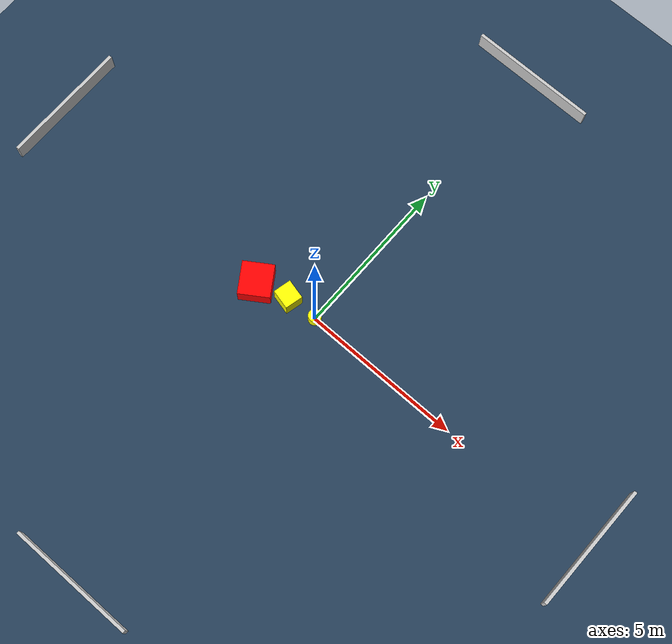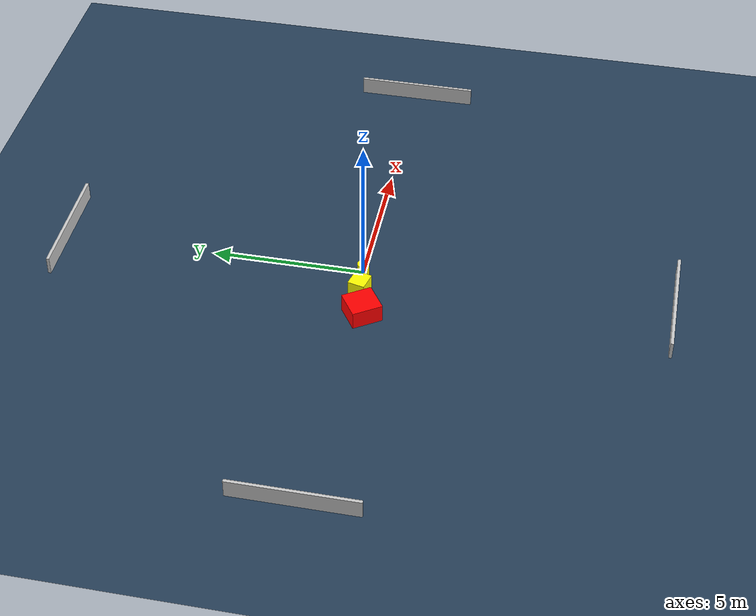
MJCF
<?xml version="1.0" ?>
<mujoco model="generated_environment">
  <option timestep="0.01" integrator="RK4" cone="elliptic"/>
  <default>
    <geom density="1"/>
  </default>
  <asset>
    <texture builtin="gradient" height="3072" name="skybox" rgb1="0.3 0.5 0.7" rgb2="0 0 0" type="skybox" width="512"/>
    <texture builtin="checker" height="300" name="groundplane" rgb1="0.2 0.3 0.4" rgb2="0.1 0.2 0.3" type="2d" width="300"/>
    <material name="groundplane" reflectance="0.2" texrepeat="5 5" texture="groundplane"/>
  </asset>
  <worldbody>
    <light dir="0 0 -1" directional="true" pos="0 0 1.5"/>
    <geom condim="3" friction="0.5 0.005 0.001" material="groundplane" name="floor" pos="0 0 0" size="0 0 0.05" type="plane"/>
    <body name="walls">
      <geom name="wall_1" condim="4" pos="-10.0 0.0 0.3" rgba="0.800000011920929 0.800000011920929 0.800000011920929 1.0" size="0.05 2.0 0.3" type="box"/>
      <geom name="wall_2" condim="4" pos="10.0 0.0 0.3" rgba="0.800000011920929 0.800000011920929 0.800000011920929 1.0" size="0.05 2.0 0.3" type="box"/>
      <geom name="wall_3" condim="4" pos="0.0 -10.0 0.3" rgba="0.800000011920929 0.800000011920929 0.800000011920929 1.0" size="2.0 0.05 0.3" type="box"/>
      <geom name="wall_4" condim="4" pos="0.0 10.0 0.3" rgba="0.800000011920929 0.800000011920929 0.800000011920929 1.0" size="2.0 0.05 0.3" type="box"/>
    </body>
    <body name="robot">
      <joint name="joint_x" type="slide" pos="0 0 0" axis="1 0 0"/>
      <joint name="joint_y" type="slide" pos="0 0 0" axis="0 1 0"/>
      <geom name="robot" type="cylinder" pos="0.0 0.0 0.2" size="0.2 0.2 0.0" mass="5.0" friction="1.0 0.005 0.0001" condim="4" rgba="1.0 1.0 0.0 1.0"/>
    </body>
    <body name="obstacle_1_movable">
      <geom name="obstacle_1_movable" condim="4" pos="-0.9591588025455136 -0.07421431962947973 0.3" euler="0 0 76.41902365632097" friction="0.0 0.005 0.001" rgba="1.0 1.0 0.0 1.0" size="0.28122273220885075 0.30788859335954916 0.3" type="box" mass="0.1"/>
      <joint type="free"/>
    </body>
    <body name="obstacle_2_static">
      <geom name="obstacle_2_static" condim="4" pos="-1.9540598266945874 -0.34191908173811264 0.3" euler="0 0 123.42348193384592" friction="0.0 0.005 0.001" rgba="1.0 0.0 0.0 1.0" size="0.5056414798441097 0.4827798785717203 0.3" type="box"/>
    </body>
  </worldbody>
  <actuator>
    <motor name="actuator_x" joint="joint_x" gear="1" ctrlrange="-1 1"/>
    <motor name="actuator_y" joint="joint_y" gear="1" ctrlrange="-1 1"/>
  </actuator>
</mujoco>
